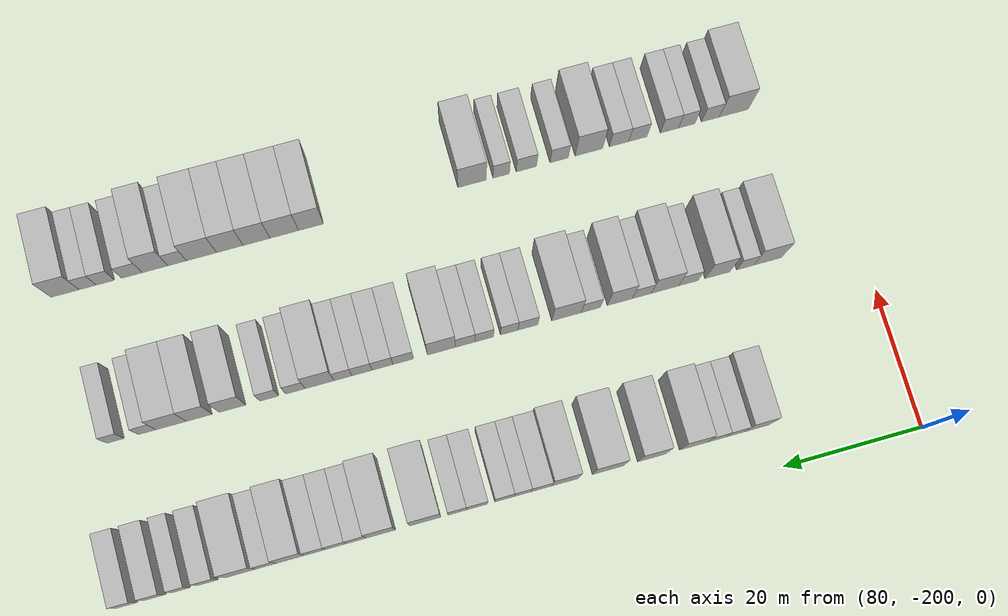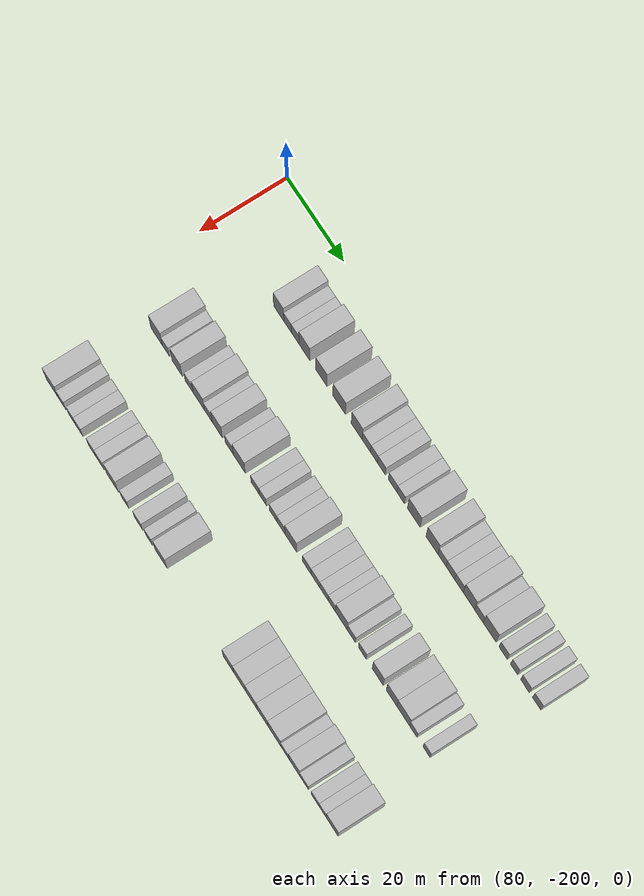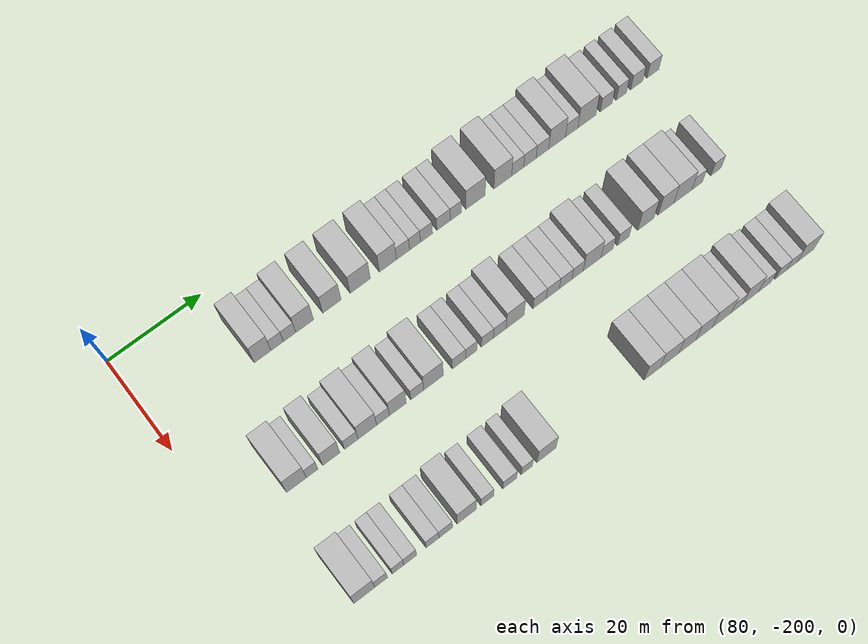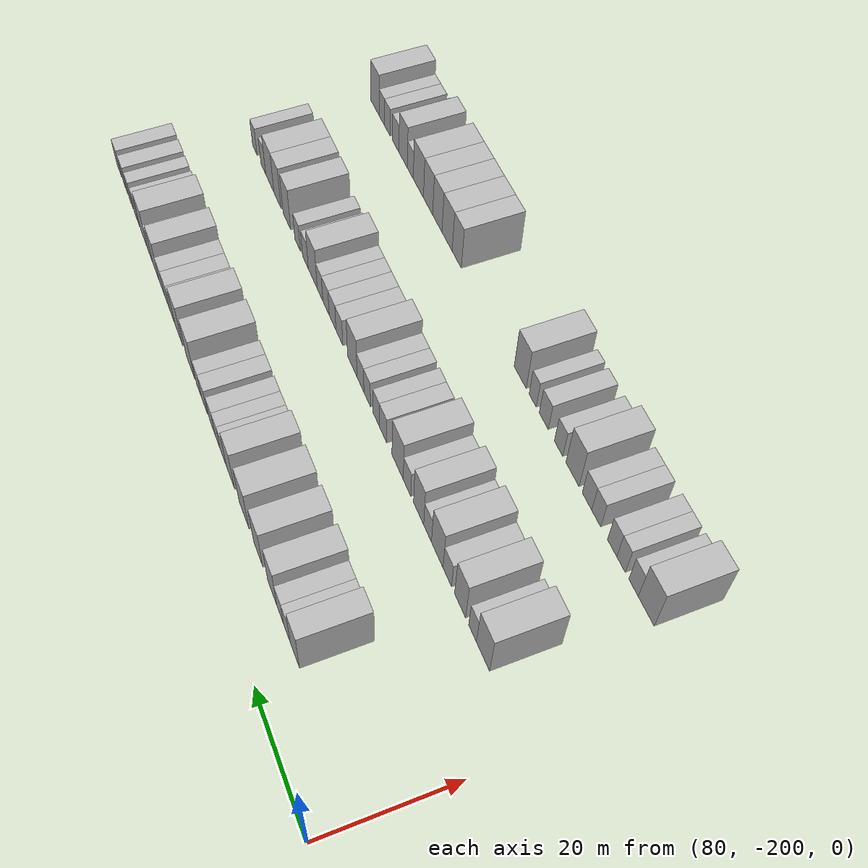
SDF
<sdf version="1.6">
 <world name="default">
  <model name="building_631">
   <static>1</static>
   <pose>91.0000 -178.0010 0 0.000000 0.000000 0.000000</pose>
   <link name="link">
    <pose>0 0 4.50 0 0 0</pose>
    <collision name="collision"><geometry><box><size>10.0000 3.6099 9.0000</size></box></geometry></collision>
    <visual name="visual">
     <cast_shadows>0</cast_shadows>
     <geometry><box><size>10.0000 3.6099 9.0000</size></box></geometry>
     <material>
      <script>
       <uri>model://HANNAS_wall/materials/scripts</uri>
       <uri>model://HANNAS_wall/materials/textures</uri>
       <name>vrc/HANNAS_wall</name>
      </script>
     </material>
    </visual>
   </link>
  </model>
  <model name="building_632">
   <static>1</static>
   <pose>91.0000 -174.8711 0 0.000000 0.000000 0.000000</pose>
   <link name="link">
    <pose>0 0 3.00 0 0 0</pose>
    <collision name="collision"><geometry><box><size>10.0000 2.6500 6.0000</size></box></geometry></collision>
    <visual name="visual">
     <cast_shadows>0</cast_shadows>
     <geometry><box><size>10.0000 2.6500 6.0000</size></box></geometry>
     <material>
      <script>
       <uri>model://HANNAS_wall/materials/scripts</uri>
       <uri>model://HANNAS_wall/materials/textures</uri>
       <name>vrc/HANNAS_wall</name>
      </script>
     </material>
    </visual>
   </link>
  </model>
  <model name="building_633">
   <static>1</static>
   <pose>91.0000 -172.1961 0 0.000000 0.000000 0.000000</pose>
   <link name="link">
    <pose>0 0 3.00 0 0 0</pose>
    <collision name="collision"><geometry><box><size>10.0000 2.7001 6.0000</size></box></geometry></collision>
    <visual name="visual">
     <cast_shadows>0</cast_shadows>
     <geometry><box><size>10.0000 2.7001 6.0000</size></box></geometry>
     <material>
      <script>
       <uri>model://HANNAS_wall/materials/scripts</uri>
       <uri>model://HANNAS_wall/materials/textures</uri>
       <name>vrc/HANNAS_wall</name>
      </script>
     </material>
    </visual>
   </link>
  </model>
  <model name="building_634">
   <static>1</static>
   <pose>91.0000 -168.9199 0 0.000000 0.000000 0.000000</pose>
   <link name="link">
    <pose>0 0 4.50 0 0 0</pose>
    <collision name="collision"><geometry><box><size>10.0000 3.8522 9.0000</size></box></geometry></collision>
    <visual name="visual">
     <cast_shadows>0</cast_shadows>
     <geometry><box><size>10.0000 3.8522 9.0000</size></box></geometry>
     <material>
      <script>
       <uri>model://HANNAS_wall/materials/scripts</uri>
       <uri>model://HANNAS_wall/materials/textures</uri>
       <name>vrc/HANNAS_wall</name>
      </script>
     </material>
    </visual>
   </link>
  </model>
  <model name="building_635">
   <static>1</static>
   <pose>91.0000 -162.9932 0 0.000000 0.000000 0.000000</pose>
   <link name="link">
    <pose>0 0 4.50 0 0 0</pose>
    <collision name="collision"><geometry><box><size>10.0000 4.0012 9.0000</size></box></geometry></collision>
    <visual name="visual">
     <cast_shadows>0</cast_shadows>
     <geometry><box><size>10.0000 4.0012 9.0000</size></box></geometry>
     <material>
      <script>
       <uri>model://HANNAS_wall/materials/scripts</uri>
       <uri>model://HANNAS_wall/materials/textures</uri>
       <name>vrc/HANNAS_wall</name>
      </script>
     </material>
    </visual>
   </link>
  </model>
  <model name="building_636">
   <static>1</static>
   <pose>91.0000 -156.7689 0 0.000000 0.000000 0.000000</pose>
   <link name="link">
    <pose>0 0 4.50 0 0 0</pose>
    <collision name="collision"><geometry><box><size>10.0000 4.4474 9.0000</size></box></geometry></collision>
    <visual name="visual">
     <cast_shadows>0</cast_shadows>
     <geometry><box><size>10.0000 4.4474 9.0000</size></box></geometry>
     <material>
      <script>
       <uri>model://HANNAS_wall/materials/scripts</uri>
       <uri>model://HANNAS_wall/materials/textures</uri>
       <name>vrc/HANNAS_wall</name>
      </script>
     </material>
    </visual>
   </link>
  </model>
  <model name="building_637">
   <static>1</static>
   <pose>91.0000 -150.6498 0 0.000000 0.000000 0.000000</pose>
   <link name="link">
    <pose>0 0 4.50 0 0 0</pose>
    <collision name="collision"><geometry><box><size>10.0000 3.7909 9.0000</size></box></geometry></collision>
    <visual name="visual">
     <cast_shadows>0</cast_shadows>
     <geometry><box><size>10.0000 3.7909 9.0000</size></box></geometry>
     <material>
      <script>
       <uri>model://HANNAS_wall/materials/scripts</uri>
       <uri>model://HANNAS_wall/materials/textures</uri>
       <name>vrc/HANNAS_wall</name>
      </script>
     </material>
    </visual>
   </link>
  </model>
  <model name="building_638">
   <static>1</static>
   <pose>91.0000 -147.2867 0 0.000000 0.000000 0.000000</pose>
   <link name="link">
    <pose>0 0 3.00 0 0 0</pose>
    <collision name="collision"><geometry><box><size>10.0000 2.9354 6.0000</size></box></geometry></collision>
    <visual name="visual">
     <cast_shadows>0</cast_shadows>
     <geometry><box><size>10.0000 2.9354 6.0000</size></box></geometry>
     <material>
      <script>
       <uri>model://HANNAS_wall/materials/scripts</uri>
       <uri>model://HANNAS_wall/materials/textures</uri>
       <name>vrc/HANNAS_wall</name>
      </script>
     </material>
    </visual>
   </link>
  </model>
  <model name="building_639">
   <static>1</static>
   <pose>91.0000 -144.6135 0 0.000000 0.000000 0.000000</pose>
   <link name="link">
    <pose>0 0 3.00 0 0 0</pose>
    <collision name="collision"><geometry><box><size>10.0000 2.4109 6.0000</size></box></geometry></collision>
    <visual name="visual">
     <cast_shadows>0</cast_shadows>
     <geometry><box><size>10.0000 2.4109 6.0000</size></box></geometry>
     <material>
      <script>
       <uri>model://HANNAS_wall/materials/scripts</uri>
       <uri>model://HANNAS_wall/materials/textures</uri>
       <name>vrc/HANNAS_wall</name>
      </script>
     </material>
    </visual>
   </link>
  </model>
  <model name="building_640">
   <static>1</static>
   <pose>91.0000 -142.0488 0 0.000000 0.000000 0.000000</pose>
   <link name="link">
    <pose>0 0 3.00 0 0 0</pose>
    <collision name="collision"><geometry><box><size>10.0000 2.7184 6.0000</size></box></geometry></collision>
    <visual name="visual">
     <cast_shadows>0</cast_shadows>
     <geometry><box><size>10.0000 2.7184 6.0000</size></box></geometry>
     <material>
      <script>
       <uri>model://HANNAS_wall/materials/scripts</uri>
       <uri>model://HANNAS_wall/materials/textures</uri>
       <name>vrc/HANNAS_wall</name>
      </script>
     </material>
    </visual>
   </link>
  </model>
  <model name="building_641">
   <static>1</static>
   <pose>91.0000 -138.1984 0 0.000000 0.000000 0.000000</pose>
   <link name="link">
    <pose>0 0 3.00 0 0 0</pose>
    <collision name="collision"><geometry><box><size>10.0000 2.9824 6.0000</size></box></geometry></collision>
    <visual name="visual">
     <cast_shadows>0</cast_shadows>
     <geometry><box><size>10.0000 2.9824 6.0000</size></box></geometry>
     <material>
      <script>
       <uri>model://HANNAS_wall/materials/scripts</uri>
       <uri>model://HANNAS_wall/materials/textures</uri>
       <name>vrc/HANNAS_wall</name>
      </script>
     </material>
    </visual>
   </link>
  </model>
  <model name="building_642">
   <static>1</static>
   <pose>91.0000 -135.4070 0 0.000000 0.000000 0.000000</pose>
   <link name="link">
    <pose>0 0 3.00 0 0 0</pose>
    <collision name="collision"><geometry><box><size>10.0000 2.6004 6.0000</size></box></geometry></collision>
    <visual name="visual">
     <cast_shadows>0</cast_shadows>
     <geometry><box><size>10.0000 2.6004 6.0000</size></box></geometry>
     <material>
      <script>
       <uri>model://HANNAS_wall/materials/scripts</uri>
       <uri>model://HANNAS_wall/materials/textures</uri>
       <name>vrc/HANNAS_wall</name>
      </script>
     </material>
    </visual>
   </link>
  </model>
  <model name="building_643">
   <static>1</static>
   <pose>91.0000 -130.9246 0 0.000000 0.000000 0.000000</pose>
   <link name="link">
    <pose>0 0 4.50 0 0 0</pose>
    <collision name="collision"><geometry><box><size>10.0000 4.3645 9.0000</size></box></geometry></collision>
    <visual name="visual">
     <cast_shadows>0</cast_shadows>
     <geometry><box><size>10.0000 4.3645 9.0000</size></box></geometry>
     <material>
      <script>
       <uri>model://HANNAS_wall/materials/scripts</uri>
       <uri>model://HANNAS_wall/materials/textures</uri>
       <name>vrc/HANNAS_wall</name>
      </script>
     </material>
    </visual>
   </link>
  </model>
  <model name="building_644">
   <static>1</static>
   <pose>91.0000 -124.6934 0 0.000000 0.000000 0.000000</pose>
   <link name="link">
    <pose>0 0 4.50 0 0 0</pose>
    <collision name="collision"><geometry><box><size>10.0000 4.0978 9.0000</size></box></geometry></collision>
    <visual name="visual">
     <cast_shadows>0</cast_shadows>
     <geometry><box><size>10.0000 4.0978 9.0000</size></box></geometry>
     <material>
      <script>
       <uri>model://HANNAS_wall/materials/scripts</uri>
       <uri>model://HANNAS_wall/materials/textures</uri>
       <name>vrc/HANNAS_wall</name>
      </script>
     </material>
    </visual>
   </link>
  </model>
  <model name="building_645">
   <static>1</static>
   <pose>91.0000 -121.2723 0 0.000000 0.000000 0.000000</pose>
   <link name="link">
    <pose>0 0 3.00 0 0 0</pose>
    <collision name="collision"><geometry><box><size>10.0000 2.7444 6.0000</size></box></geometry></collision>
    <visual name="visual">
     <cast_shadows>0</cast_shadows>
     <geometry><box><size>10.0000 2.7444 6.0000</size></box></geometry>
     <material>
      <script>
       <uri>model://HANNAS_wall/materials/scripts</uri>
       <uri>model://HANNAS_wall/materials/textures</uri>
       <name>vrc/HANNAS_wall</name>
      </script>
     </material>
    </visual>
   </link>
  </model>
  <model name="building_646">
   <static>1</static>
   <pose>91.0000 -118.4470 0 0.000000 0.000000 0.000000</pose>
   <link name="link">
    <pose>0 0 3.00 0 0 0</pose>
    <collision name="collision"><geometry><box><size>10.0000 2.9062 6.0000</size></box></geometry></collision>
    <visual name="visual">
     <cast_shadows>0</cast_shadows>
     <geometry><box><size>10.0000 2.9062 6.0000</size></box></geometry>
     <material>
      <script>
       <uri>model://HANNAS_wall/materials/scripts</uri>
       <uri>model://HANNAS_wall/materials/textures</uri>
       <name>vrc/HANNAS_wall</name>
      </script>
     </material>
    </visual>
   </link>
  </model>
  <model name="building_647">
   <static>1</static>
   <pose>91.0000 -115.5477 0 0.000000 0.000000 0.000000</pose>
   <link name="link">
    <pose>0 0 3.00 0 0 0</pose>
    <collision name="collision"><geometry><box><size>10.0000 2.8924 6.0000</size></box></geometry></collision>
    <visual name="visual">
     <cast_shadows>0</cast_shadows>
     <geometry><box><size>10.0000 2.8924 6.0000</size></box></geometry>
     <material>
      <script>
       <uri>model://HANNAS_wall/materials/scripts</uri>
       <uri>model://HANNAS_wall/materials/textures</uri>
       <name>vrc/HANNAS_wall</name>
      </script>
     </material>
    </visual>
   </link>
  </model>
  <model name="building_648">
   <static>1</static>
   <pose>91.0000 -112.1415 0 0.000000 0.000000 0.000000</pose>
   <link name="link">
    <pose>0 0 4.50 0 0 0</pose>
    <collision name="collision"><geometry><box><size>10.0000 3.9200 9.0000</size></box></geometry></collision>
    <visual name="visual">
     <cast_shadows>0</cast_shadows>
     <geometry><box><size>10.0000 3.9200 9.0000</size></box></geometry>
     <material>
      <script>
       <uri>model://HANNAS_wall/materials/scripts</uri>
       <uri>model://HANNAS_wall/materials/textures</uri>
       <name>vrc/HANNAS_wall</name>
      </script>
     </material>
    </visual>
   </link>
  </model>
  <model name="building_649">
   <static>1</static>
   <pose>91.0000 -108.7405 0 0.000000 0.000000 0.000000</pose>
   <link name="link">
    <pose>0 0 3.00 0 0 0</pose>
    <collision name="collision"><geometry><box><size>10.0000 2.8820 6.0000</size></box></geometry></collision>
    <visual name="visual">
     <cast_shadows>0</cast_shadows>
     <geometry><box><size>10.0000 2.8820 6.0000</size></box></geometry>
     <material>
      <script>
       <uri>model://HANNAS_wall/materials/scripts</uri>
       <uri>model://HANNAS_wall/materials/textures</uri>
       <name>vrc/HANNAS_wall</name>
      </script>
     </material>
    </visual>
   </link>
  </model>
  <model name="building_650">
   <static>1</static>
   <pose>91.0000 -105.1412 0 0.000000 0.000000 0.000000</pose>
   <link name="link">
    <pose>0 0 4.50 0 0 0</pose>
    <collision name="collision"><geometry><box><size>10.0000 4.3166 9.0000</size></box></geometry></collision>
    <visual name="visual">
     <cast_shadows>0</cast_shadows>
     <geometry><box><size>10.0000 4.3166 9.0000</size></box></geometry>
     <material>
      <script>
       <uri>model://HANNAS_wall/materials/scripts</uri>
       <uri>model://HANNAS_wall/materials/textures</uri>
       <name>vrc/HANNAS_wall</name>
      </script>
     </material>
    </visual>
   </link>
  </model>
  <model name="building_651">
   <static>1</static>
   <pose>91.0000 -100.5816 0 0.000000 0.000000 0.000000</pose>
   <link name="link">
    <pose>0 0 3.00 0 0 0</pose>
    <collision name="collision"><geometry><box><size>10.0000 2.8026 6.0000</size></box></geometry></collision>
    <visual name="visual">
     <cast_shadows>0</cast_shadows>
     <geometry><box><size>10.0000 2.8026 6.0000</size></box></geometry>
     <material>
      <script>
       <uri>model://HANNAS_wall/materials/scripts</uri>
       <uri>model://HANNAS_wall/materials/textures</uri>
       <name>vrc/HANNAS_wall</name>
      </script>
     </material>
    </visual>
   </link>
  </model>
  <model name="building_652">
   <static>1</static>
   <pose>91.0000 -96.9706 0 0.000000 0.000000 0.000000</pose>
   <link name="link">
    <pose>0 0 3.00 0 0 0</pose>
    <collision name="collision"><geometry><box><size>10.0000 2.4193 6.0000</size></box></geometry></collision>
    <visual name="visual">
     <cast_shadows>0</cast_shadows>
     <geometry><box><size>10.0000 2.4193 6.0000</size></box></geometry>
     <material>
      <script>
       <uri>model://HANNAS_wall/materials/scripts</uri>
       <uri>model://HANNAS_wall/materials/textures</uri>
       <name>vrc/HANNAS_wall</name>
      </script>
     </material>
    </visual>
   </link>
  </model>
  <model name="building_653">
   <static>1</static>
   <pose>91.0000 -93.2963 0 0.000000 0.000000 0.000000</pose>
   <link name="link">
    <pose>0 0 3.00 0 0 0</pose>
    <collision name="collision"><geometry><box><size>10.0000 2.9294 6.0000</size></box></geometry></collision>
    <visual name="visual">
     <cast_shadows>0</cast_shadows>
     <geometry><box><size>10.0000 2.9294 6.0000</size></box></geometry>
     <material>
      <script>
       <uri>model://HANNAS_wall/materials/scripts</uri>
       <uri>model://HANNAS_wall/materials/textures</uri>
       <name>vrc/HANNAS_wall</name>
      </script>
     </material>
    </visual>
   </link>
  </model>
  <model name="building_654">
   <static>1</static>
   <pose>91.0000 -89.4094 0 0.000000 0.000000 0.000000</pose>
   <link name="link">
    <pose>0 0 3.00 0 0 0</pose>
    <collision name="collision"><geometry><box><size>10.0000 2.8443 6.0000</size></box></geometry></collision>
    <visual name="visual">
     <cast_shadows>0</cast_shadows>
     <geometry><box><size>10.0000 2.8443 6.0000</size></box></geometry>
     <material>
      <script>
       <uri>model://HANNAS_wall/materials/scripts</uri>
       <uri>model://HANNAS_wall/materials/textures</uri>
       <name>vrc/HANNAS_wall</name>
      </script>
     </material>
    </visual>
   </link>
  </model>
  <model name="building_819">
   <static>1</static>
   <pose>113.0000 -186.6256 0 0.000000 0.000000 0.000000</pose>
   <link name="link">
    <pose>0 0 4.50 0 0 0</pose>
    <collision name="collision"><geometry><box><size>10.0000 4.1441 9.0000</size></box></geometry></collision>
    <visual name="visual">
     <cast_shadows>0</cast_shadows>
     <geometry><box><size>10.0000 4.1441 9.0000</size></box></geometry>
     <material>
      <script>
       <uri>model://HANNAS_wall/materials/scripts</uri>
       <uri>model://HANNAS_wall/materials/textures</uri>
       <name>vrc/HANNAS_wall</name>
      </script>
     </material>
    </visual>
   </link>
  </model>
  <model name="building_820">
   <static>1</static>
   <pose>113.0000 -183.3232 0 0.000000 0.000000 0.000000</pose>
   <link name="link">
    <pose>0 0 3.00 0 0 0</pose>
    <collision name="collision"><geometry><box><size>10.0000 2.4608 6.0000</size></box></geometry></collision>
    <visual name="visual">
     <cast_shadows>0</cast_shadows>
     <geometry><box><size>10.0000 2.4608 6.0000</size></box></geometry>
     <material>
      <script>
       <uri>model://HANNAS_wall/materials/scripts</uri>
       <uri>model://HANNAS_wall/materials/textures</uri>
       <name>vrc/HANNAS_wall</name>
      </script>
     </material>
    </visual>
   </link>
  </model>
  <model name="building_821">
   <static>1</static>
   <pose>113.0000 -179.2769 0 0.000000 0.000000 0.000000</pose>
   <link name="link">
    <pose>0 0 4.50 0 0 0</pose>
    <collision name="collision"><geometry><box><size>10.0000 3.6319 9.0000</size></box></geometry></collision>
    <visual name="visual">
     <cast_shadows>0</cast_shadows>
     <geometry><box><size>10.0000 3.6319 9.0000</size></box></geometry>
     <material>
      <script>
       <uri>model://HANNAS_wall/materials/scripts</uri>
       <uri>model://HANNAS_wall/materials/textures</uri>
       <name>vrc/HANNAS_wall</name>
      </script>
     </material>
    </visual>
   </link>
  </model>
  <model name="building_822">
   <static>1</static>
   <pose>113.0000 -175.0207 0 0.000000 0.000000 0.000000</pose>
   <link name="link">
    <pose>0 0 3.00 0 0 0</pose>
    <collision name="collision"><geometry><box><size>10.0000 2.8804 6.0000</size></box></geometry></collision>
    <visual name="visual">
     <cast_shadows>0</cast_shadows>
     <geometry><box><size>10.0000 2.8804 6.0000</size></box></geometry>
     <material>
      <script>
       <uri>model://HANNAS_wall/materials/scripts</uri>
       <uri>model://HANNAS_wall/materials/textures</uri>
       <name>vrc/HANNAS_wall</name>
      </script>
     </material>
    </visual>
   </link>
  </model>
  <model name="building_823">
   <static>1</static>
   <pose>113.0000 -171.5806 0 0.000000 0.000000 0.000000</pose>
   <link name="link">
    <pose>0 0 4.50 0 0 0</pose>
    <collision name="collision"><geometry><box><size>10.0000 3.9998 9.0000</size></box></geometry></collision>
    <visual name="visual">
     <cast_shadows>0</cast_shadows>
     <geometry><box><size>10.0000 3.9998 9.0000</size></box></geometry>
     <material>
      <script>
       <uri>model://HANNAS_wall/materials/scripts</uri>
       <uri>model://HANNAS_wall/materials/textures</uri>
       <name>vrc/HANNAS_wall</name>
      </script>
     </material>
    </visual>
   </link>
  </model>
  <model name="building_824">
   <static>1</static>
   <pose>113.0000 -168.2047 0 0.000000 0.000000 0.000000</pose>
   <link name="link">
    <pose>0 0 3.00 0 0 0</pose>
    <collision name="collision"><geometry><box><size>10.0000 2.7519 6.0000</size></box></geometry></collision>
    <visual name="visual">
     <cast_shadows>0</cast_shadows>
     <geometry><box><size>10.0000 2.7519 6.0000</size></box></geometry>
     <material>
      <script>
       <uri>model://HANNAS_wall/materials/scripts</uri>
       <uri>model://HANNAS_wall/materials/textures</uri>
       <name>vrc/HANNAS_wall</name>
      </script>
     </material>
    </visual>
   </link>
  </model>
  <model name="building_825">
   <static>1</static>
   <pose>113.0000 -165.0136 0 0.000000 0.000000 0.000000</pose>
   <link name="link">
    <pose>0 0 4.50 0 0 0</pose>
    <collision name="collision"><geometry><box><size>10.0000 3.6305 9.0000</size></box></geometry></collision>
    <visual name="visual">
     <cast_shadows>0</cast_shadows>
     <geometry><box><size>10.0000 3.6305 9.0000</size></box></geometry>
     <material>
      <script>
       <uri>model://HANNAS_wall/materials/scripts</uri>
       <uri>model://HANNAS_wall/materials/textures</uri>
       <name>vrc/HANNAS_wall</name>
      </script>
     </material>
    </visual>
   </link>
  </model>
  <model name="building_826">
   <static>1</static>
   <pose>113.0000 -160.8009 0 0.000000 0.000000 0.000000</pose>
   <link name="link">
    <pose>0 0 3.00 0 0 0</pose>
    <collision name="collision"><geometry><box><size>10.0000 2.7948 6.0000</size></box></geometry></collision>
    <visual name="visual">
     <cast_shadows>0</cast_shadows>
     <geometry><box><size>10.0000 2.7948 6.0000</size></box></geometry>
     <material>
      <script>
       <uri>model://HANNAS_wall/materials/scripts</uri>
       <uri>model://HANNAS_wall/materials/textures</uri>
       <name>vrc/HANNAS_wall</name>
      </script>
     </material>
    </visual>
   </link>
  </model>
  <model name="building_827">
   <static>1</static>
   <pose>113.0000 -157.2652 0 0.000000 0.000000 0.000000</pose>
   <link name="link">
    <pose>0 0 4.50 0 0 0</pose>
    <collision name="collision"><geometry><box><size>10.0000 4.2765 9.0000</size></box></geometry></collision>
    <visual name="visual">
     <cast_shadows>0</cast_shadows>
     <geometry><box><size>10.0000 4.2765 9.0000</size></box></geometry>
     <material>
      <script>
       <uri>model://HANNAS_wall/materials/scripts</uri>
       <uri>model://HANNAS_wall/materials/textures</uri>
       <name>vrc/HANNAS_wall</name>
      </script>
     </material>
    </visual>
   </link>
  </model>
  <model name="building_828">
   <static>1</static>
   <pose>113.0000 -151.6855 0 0.000000 0.000000 0.000000</pose>
   <link name="link">
    <pose>0 0 3.00 0 0 0</pose>
    <collision name="collision"><geometry><box><size>10.0000 2.8829 6.0000</size></box></geometry></collision>
    <visual name="visual">
     <cast_shadows>0</cast_shadows>
     <geometry><box><size>10.0000 2.8829 6.0000</size></box></geometry>
     <material>
      <script>
       <uri>model://HANNAS_wall/materials/scripts</uri>
       <uri>model://HANNAS_wall/materials/textures</uri>
       <name>vrc/HANNAS_wall</name>
      </script>
     </material>
    </visual>
   </link>
  </model>
  <model name="building_829">
   <static>1</static>
   <pose>113.0000 -148.9805 0 0.000000 0.000000 0.000000</pose>
   <link name="link">
    <pose>0 0 3.00 0 0 0</pose>
    <collision name="collision"><geometry><box><size>10.0000 2.5271 6.0000</size></box></geometry></collision>
    <visual name="visual">
     <cast_shadows>0</cast_shadows>
     <geometry><box><size>10.0000 2.5271 6.0000</size></box></geometry>
     <material>
      <script>
       <uri>model://HANNAS_wall/materials/scripts</uri>
       <uri>model://HANNAS_wall/materials/textures</uri>
       <name>vrc/HANNAS_wall</name>
      </script>
     </material>
    </visual>
   </link>
  </model>
  <model name="building_830">
   <static>1</static>
   <pose>113.0000 -145.3909 0 0.000000 0.000000 0.000000</pose>
   <link name="link">
    <pose>0 0 3.00 0 0 0</pose>
    <collision name="collision"><geometry><box><size>10.0000 2.6521 6.0000</size></box></geometry></collision>
    <visual name="visual">
     <cast_shadows>0</cast_shadows>
     <geometry><box><size>10.0000 2.6521 6.0000</size></box></geometry>
     <material>
      <script>
       <uri>model://HANNAS_wall/materials/scripts</uri>
       <uri>model://HANNAS_wall/materials/textures</uri>
       <name>vrc/HANNAS_wall</name>
      </script>
     </material>
    </visual>
   </link>
  </model>
  <model name="building_831">
   <static>1</static>
   <pose>113.0000 -142.6433 0 0.000000 0.000000 0.000000</pose>
   <link name="link">
    <pose>0 0 3.00 0 0 0</pose>
    <collision name="collision"><geometry><box><size>10.0000 2.8433 6.0000</size></box></geometry></collision>
    <visual name="visual">
     <cast_shadows>0</cast_shadows>
     <geometry><box><size>10.0000 2.8433 6.0000</size></box></geometry>
     <material>
      <script>
       <uri>model://HANNAS_wall/materials/scripts</uri>
       <uri>model://HANNAS_wall/materials/textures</uri>
       <name>vrc/HANNAS_wall</name>
      </script>
     </material>
    </visual>
   </link>
  </model>
  <model name="building_832">
   <static>1</static>
   <pose>113.0000 -139.2187 0 0.000000 0.000000 0.000000</pose>
   <link name="link">
    <pose>0 0 4.50 0 0 0</pose>
    <collision name="collision"><geometry><box><size>10.0000 4.0060 9.0000</size></box></geometry></collision>
    <visual name="visual">
     <cast_shadows>0</cast_shadows>
     <geometry><box><size>10.0000 4.0060 9.0000</size></box></geometry>
     <material>
      <script>
       <uri>model://HANNAS_wall/materials/scripts</uri>
       <uri>model://HANNAS_wall/materials/textures</uri>
       <name>vrc/HANNAS_wall</name>
      </script>
     </material>
    </visual>
   </link>
  </model>
  <model name="building_833">
   <static>1</static>
   <pose>113.0000 -133.7383 0 0.000000 0.000000 0.000000</pose>
   <link name="link">
    <pose>0 0 3.00 0 0 0</pose>
    <collision name="collision"><geometry><box><size>10.0000 2.9546 6.0000</size></box></geometry></collision>
    <visual name="visual">
     <cast_shadows>0</cast_shadows>
     <geometry><box><size>10.0000 2.9546 6.0000</size></box></geometry>
     <material>
      <script>
       <uri>model://HANNAS_wall/materials/scripts</uri>
       <uri>model://HANNAS_wall/materials/textures</uri>
       <name>vrc/HANNAS_wall</name>
      </script>
     </material>
    </visual>
   </link>
  </model>
  <model name="building_834">
   <static>1</static>
   <pose>113.0000 -130.7680 0 0.000000 0.000000 0.000000</pose>
   <link name="link">
    <pose>0 0 3.00 0 0 0</pose>
    <collision name="collision"><geometry><box><size>10.0000 2.9861 6.0000</size></box></geometry></collision>
    <visual name="visual">
     <cast_shadows>0</cast_shadows>
     <geometry><box><size>10.0000 2.9861 6.0000</size></box></geometry>
     <material>
      <script>
       <uri>model://HANNAS_wall/materials/scripts</uri>
       <uri>model://HANNAS_wall/materials/textures</uri>
       <name>vrc/HANNAS_wall</name>
      </script>
     </material>
    </visual>
   </link>
  </model>
  <model name="building_835">
   <static>1</static>
   <pose>113.0000 -127.8377 0 0.000000 0.000000 0.000000</pose>
   <link name="link">
    <pose>0 0 3.00 0 0 0</pose>
    <collision name="collision"><geometry><box><size>10.0000 2.8746 6.0000</size></box></geometry></collision>
    <visual name="visual">
     <cast_shadows>0</cast_shadows>
     <geometry><box><size>10.0000 2.8746 6.0000</size></box></geometry>
     <material>
      <script>
       <uri>model://HANNAS_wall/materials/scripts</uri>
       <uri>model://HANNAS_wall/materials/textures</uri>
       <name>vrc/HANNAS_wall</name>
      </script>
     </material>
    </visual>
   </link>
  </model>
  <model name="building_836">
   <static>1</static>
   <pose>113.0000 -125.1226 0 0.000000 0.000000 0.000000</pose>
   <link name="link">
    <pose>0 0 3.00 0 0 0</pose>
    <collision name="collision"><geometry><box><size>10.0000 2.5556 6.0000</size></box></geometry></collision>
    <visual name="visual">
     <cast_shadows>0</cast_shadows>
     <geometry><box><size>10.0000 2.5556 6.0000</size></box></geometry>
     <material>
      <script>
       <uri>model://HANNAS_wall/materials/scripts</uri>
       <uri>model://HANNAS_wall/materials/textures</uri>
       <name>vrc/HANNAS_wall</name>
      </script>
     </material>
    </visual>
   </link>
  </model>
  <model name="building_837">
   <static>1</static>
   <pose>113.0000 -121.7900 0 0.000000 0.000000 0.000000</pose>
   <link name="link">
    <pose>0 0 4.50 0 0 0</pose>
    <collision name="collision"><geometry><box><size>10.0000 4.1096 9.0000</size></box></geometry></collision>
    <visual name="visual">
     <cast_shadows>0</cast_shadows>
     <geometry><box><size>10.0000 4.1096 9.0000</size></box></geometry>
     <material>
      <script>
       <uri>model://HANNAS_wall/materials/scripts</uri>
       <uri>model://HANNAS_wall/materials/textures</uri>
       <name>vrc/HANNAS_wall</name>
      </script>
     </material>
    </visual>
   </link>
  </model>
  <model name="building_838">
   <static>1</static>
   <pose>113.0000 -118.3563 0 0.000000 0.000000 0.000000</pose>
   <link name="link">
    <pose>0 0 3.00 0 0 0</pose>
    <collision name="collision"><geometry><box><size>10.0000 2.7577 6.0000</size></box></geometry></collision>
    <visual name="visual">
     <cast_shadows>0</cast_shadows>
     <geometry><box><size>10.0000 2.7577 6.0000</size></box></geometry>
     <material>
      <script>
       <uri>model://HANNAS_wall/materials/scripts</uri>
       <uri>model://HANNAS_wall/materials/textures</uri>
       <name>vrc/HANNAS_wall</name>
      </script>
     </material>
    </visual>
   </link>
  </model>
  <model name="building_839">
   <static>1</static>
   <pose>113.0000 -114.6279 0 0.000000 0.000000 0.000000</pose>
   <link name="link">
    <pose>0 0 3.00 0 0 0</pose>
    <collision name="collision"><geometry><box><size>10.0000 2.6992 6.0000</size></box></geometry></collision>
    <visual name="visual">
     <cast_shadows>0</cast_shadows>
     <geometry><box><size>10.0000 2.6992 6.0000</size></box></geometry>
     <material>
      <script>
       <uri>model://HANNAS_wall/materials/scripts</uri>
       <uri>model://HANNAS_wall/materials/textures</uri>
       <name>vrc/HANNAS_wall</name>
      </script>
     </material>
    </visual>
   </link>
  </model>
  <model name="building_840">
   <static>1</static>
   <pose>113.0000 -109.3923 0 0.000000 0.000000 0.000000</pose>
   <link name="link">
    <pose>0 0 4.50 0 0 0</pose>
    <collision name="collision"><geometry><box><size>10.0000 3.7720 9.0000</size></box></geometry></collision>
    <visual name="visual">
     <cast_shadows>0</cast_shadows>
     <geometry><box><size>10.0000 3.7720 9.0000</size></box></geometry>
     <material>
      <script>
       <uri>model://HANNAS_wall/materials/scripts</uri>
       <uri>model://HANNAS_wall/materials/textures</uri>
       <name>vrc/HANNAS_wall</name>
      </script>
     </material>
    </visual>
   </link>
  </model>
  <model name="building_841">
   <static>1</static>
   <pose>113.0000 -104.6945 0 0.000000 0.000000 0.000000</pose>
   <link name="link">
    <pose>0 0 4.50 0 0 0</pose>
    <collision name="collision"><geometry><box><size>10.0000 3.6235 9.0000</size></box></geometry></collision>
    <visual name="visual">
     <cast_shadows>0</cast_shadows>
     <geometry><box><size>10.0000 3.6235 9.0000</size></box></geometry>
     <material>
      <script>
       <uri>model://HANNAS_wall/materials/scripts</uri>
       <uri>model://HANNAS_wall/materials/textures</uri>
       <name>vrc/HANNAS_wall</name>
      </script>
     </material>
    </visual>
   </link>
  </model>
  <model name="building_842">
   <static>1</static>
   <pose>113.0000 -100.7496 0 0.000000 0.000000 0.000000</pose>
   <link name="link">
    <pose>0 0 4.50 0 0 0</pose>
    <collision name="collision"><geometry><box><size>10.0000 4.2664 9.0000</size></box></geometry></collision>
    <visual name="visual">
     <cast_shadows>0</cast_shadows>
     <geometry><box><size>10.0000 4.2664 9.0000</size></box></geometry>
     <material>
      <script>
       <uri>model://HANNAS_wall/materials/scripts</uri>
       <uri>model://HANNAS_wall/materials/textures</uri>
       <name>vrc/HANNAS_wall</name>
      </script>
     </material>
    </visual>
   </link>
  </model>
  <model name="building_843">
   <static>1</static>
   <pose>113.0000 -97.3529 0 0.000000 0.000000 0.000000</pose>
   <link name="link">
    <pose>0 0 3.00 0 0 0</pose>
    <collision name="collision"><geometry><box><size>10.0000 2.5270 6.0000</size></box></geometry></collision>
    <visual name="visual">
     <cast_shadows>0</cast_shadows>
     <geometry><box><size>10.0000 2.5270 6.0000</size></box></geometry>
     <material>
      <script>
       <uri>model://HANNAS_wall/materials/scripts</uri>
       <uri>model://HANNAS_wall/materials/textures</uri>
       <name>vrc/HANNAS_wall</name>
      </script>
     </material>
    </visual>
   </link>
  </model>
  <model name="building_844">
   <static>1</static>
   <pose>113.0000 -92.8815 0 0.000000 0.000000 0.000000</pose>
   <link name="link">
    <pose>0 0 3.00 0 0 0</pose>
    <collision name="collision"><geometry><box><size>10.0000 2.4158 6.0000</size></box></geometry></collision>
    <visual name="visual">
     <cast_shadows>0</cast_shadows>
     <geometry><box><size>10.0000 2.4158 6.0000</size></box></geometry>
     <material>
      <script>
       <uri>model://HANNAS_wall/materials/scripts</uri>
       <uri>model://HANNAS_wall/materials/textures</uri>
       <name>vrc/HANNAS_wall</name>
      </script>
     </material>
    </visual>
   </link>
  </model>
  <model name="building_1009">
   <static>1</static>
   <pose>135.0000 -188.5889 0 0.000000 0.000000 0.000000</pose>
   <link name="link">
    <pose>0 0 4.50 0 0 0</pose>
    <collision name="collision"><geometry><box><size>10.0000 4.3575 9.0000</size></box></geometry></collision>
    <visual name="visual">
     <cast_shadows>0</cast_shadows>
     <geometry><box><size>10.0000 4.3575 9.0000</size></box></geometry>
     <material>
      <script>
       <uri>model://HANNAS_wall/materials/scripts</uri>
       <uri>model://HANNAS_wall/materials/textures</uri>
       <name>vrc/HANNAS_wall</name>
      </script>
     </material>
    </visual>
   </link>
  </model>
  <model name="building_1010">
   <static>1</static>
   <pose>135.0000 -185.0889 0 0.000000 0.000000 0.000000</pose>
   <link name="link">
    <pose>0 0 3.00 0 0 0</pose>
    <collision name="collision"><geometry><box><size>10.0000 2.6423 6.0000</size></box></geometry></collision>
    <visual name="visual">
     <cast_shadows>0</cast_shadows>
     <geometry><box><size>10.0000 2.6423 6.0000</size></box></geometry>
     <material>
      <script>
       <uri>model://HANNAS_wall/materials/scripts</uri>
       <uri>model://HANNAS_wall/materials/textures</uri>
       <name>vrc/HANNAS_wall</name>
      </script>
     </material>
    </visual>
   </link>
  </model>
  <model name="building_1011">
   <static>1</static>
   <pose>135.0000 -181.5540 0 0.000000 0.000000 0.000000</pose>
   <link name="link">
    <pose>0 0 3.00 0 0 0</pose>
    <collision name="collision"><geometry><box><size>10.0000 2.4275 6.0000</size></box></geometry></collision>
    <visual name="visual">
     <cast_shadows>0</cast_shadows>
     <geometry><box><size>10.0000 2.4275 6.0000</size></box></geometry>
     <material>
      <script>
       <uri>model://HANNAS_wall/materials/scripts</uri>
       <uri>model://HANNAS_wall/materials/textures</uri>
       <name>vrc/HANNAS_wall</name>
      </script>
     </material>
    </visual>
   </link>
  </model>
  <model name="building_1012">
   <static>1</static>
   <pose>135.0000 -178.9841 0 0.000000 0.000000 0.000000</pose>
   <link name="link">
    <pose>0 0 3.00 0 0 0</pose>
    <collision name="collision"><geometry><box><size>10.0000 2.7124 6.0000</size></box></geometry></collision>
    <visual name="visual">
     <cast_shadows>0</cast_shadows>
     <geometry><box><size>10.0000 2.7124 6.0000</size></box></geometry>
     <material>
      <script>
       <uri>model://HANNAS_wall/materials/scripts</uri>
       <uri>model://HANNAS_wall/materials/textures</uri>
       <name>vrc/HANNAS_wall</name>
      </script>
     </material>
    </visual>
   </link>
  </model>
  <model name="building_1013">
   <static>1</static>
   <pose>135.0000 -174.2717 0 0.000000 0.000000 0.000000</pose>
   <link name="link">
    <pose>0 0 3.00 0 0 0</pose>
    <collision name="collision"><geometry><box><size>10.0000 2.7125 6.0000</size></box></geometry></collision>
    <visual name="visual">
     <cast_shadows>0</cast_shadows>
     <geometry><box><size>10.0000 2.7125 6.0000</size></box></geometry>
     <material>
      <script>
       <uri>model://HANNAS_wall/materials/scripts</uri>
       <uri>model://HANNAS_wall/materials/textures</uri>
       <name>vrc/HANNAS_wall</name>
      </script>
     </material>
    </visual>
   </link>
  </model>
  <model name="building_1014">
   <static>1</static>
   <pose>135.0000 -171.4791 0 0.000000 0.000000 0.000000</pose>
   <link name="link">
    <pose>0 0 3.00 0 0 0</pose>
    <collision name="collision"><geometry><box><size>10.0000 2.8726 6.0000</size></box></geometry></collision>
    <visual name="visual">
     <cast_shadows>0</cast_shadows>
     <geometry><box><size>10.0000 2.8726 6.0000</size></box></geometry>
     <material>
      <script>
       <uri>model://HANNAS_wall/materials/scripts</uri>
       <uri>model://HANNAS_wall/materials/textures</uri>
       <name>vrc/HANNAS_wall</name>
      </script>
     </material>
    </visual>
   </link>
  </model>
  <model name="building_1015">
   <static>1</static>
   <pose>135.0000 -166.9937 0 0.000000 0.000000 0.000000</pose>
   <link name="link">
    <pose>0 0 4.50 0 0 0</pose>
    <collision name="collision"><geometry><box><size>10.0000 4.0982 9.0000</size></box></geometry></collision>
    <visual name="visual">
     <cast_shadows>0</cast_shadows>
     <geometry><box><size>10.0000 4.0982 9.0000</size></box></geometry>
     <material>
      <script>
       <uri>model://HANNAS_wall/materials/scripts</uri>
       <uri>model://HANNAS_wall/materials/textures</uri>
       <name>vrc/HANNAS_wall</name>
      </script>
     </material>
    </visual>
   </link>
  </model>
  <model name="building_1016">
   <static>1</static>
   <pose>135.0000 -162.5912 0 0.000000 0.000000 0.000000</pose>
   <link name="link">
    <pose>0 0 3.00 0 0 0</pose>
    <collision name="collision"><geometry><box><size>10.0000 2.7068 6.0000</size></box></geometry></collision>
    <visual name="visual">
     <cast_shadows>0</cast_shadows>
     <geometry><box><size>10.0000 2.7068 6.0000</size></box></geometry>
     <material>
      <script>
       <uri>model://HANNAS_wall/materials/scripts</uri>
       <uri>model://HANNAS_wall/materials/textures</uri>
       <name>vrc/HANNAS_wall</name>
      </script>
     </material>
    </visual>
   </link>
  </model>
  <model name="building_1017">
   <static>1</static>
   <pose>135.0000 -157.7399 0 0.000000 0.000000 0.000000</pose>
   <link name="link">
    <pose>0 0 3.00 0 0 0</pose>
    <collision name="collision"><geometry><box><size>10.0000 2.9957 6.0000</size></box></geometry></collision>
    <visual name="visual">
     <cast_shadows>0</cast_shadows>
     <geometry><box><size>10.0000 2.9957 6.0000</size></box></geometry>
     <material>
      <script>
       <uri>model://HANNAS_wall/materials/scripts</uri>
       <uri>model://HANNAS_wall/materials/textures</uri>
       <name>vrc/HANNAS_wall</name>
      </script>
     </material>
    </visual>
   </link>
  </model>
  <model name="building_1018">
   <static>1</static>
   <pose>135.0000 -154.0351 0 0.000000 0.000000 0.000000</pose>
   <link name="link">
    <pose>0 0 3.00 0 0 0</pose>
    <collision name="collision"><geometry><box><size>10.0000 2.4139 6.0000</size></box></geometry></collision>
    <visual name="visual">
     <cast_shadows>0</cast_shadows>
     <geometry><box><size>10.0000 2.4139 6.0000</size></box></geometry>
     <material>
      <script>
       <uri>model://HANNAS_wall/materials/scripts</uri>
       <uri>model://HANNAS_wall/materials/textures</uri>
       <name>vrc/HANNAS_wall</name>
      </script>
     </material>
    </visual>
   </link>
  </model>
  <model name="building_1019">
   <static>1</static>
   <pose>135.0000 -149.7430 0 0.000000 0.000000 0.000000</pose>
   <link name="link">
    <pose>0 0 4.50 0 0 0</pose>
    <collision name="collision"><geometry><box><size>10.0000 4.1704 9.0000</size></box></geometry></collision>
    <visual name="visual">
     <cast_shadows>0</cast_shadows>
     <geometry><box><size>10.0000 4.1704 9.0000</size></box></geometry>
     <material>
      <script>
       <uri>model://HANNAS_wall/materials/scripts</uri>
       <uri>model://HANNAS_wall/materials/textures</uri>
       <name>vrc/HANNAS_wall</name>
      </script>
     </material>
    </visual>
   </link>
  </model>
  <model name="building_1020">
   <static>1</static>
   <pose>135.0000 -126.2086 0 0.000000 0.000000 0.000000</pose>
   <link name="link">
    <pose>0 0 4.50 0 0 0</pose>
    <collision name="collision"><geometry><box><size>10.0000 3.6328 9.0000</size></box></geometry></collision>
    <visual name="visual">
     <cast_shadows>0</cast_shadows>
     <geometry><box><size>10.0000 3.6328 9.0000</size></box></geometry>
     <material>
      <script>
       <uri>model://HANNAS_wall/materials/scripts</uri>
       <uri>model://HANNAS_wall/materials/textures</uri>
       <name>vrc/HANNAS_wall</name>
      </script>
     </material>
    </visual>
   </link>
  </model>
  <model name="building_1021">
   <static>1</static>
   <pose>135.0000 -122.3187 0 0.000000 0.000000 0.000000</pose>
   <link name="link">
    <pose>0 0 4.50 0 0 0</pose>
    <collision name="collision"><geometry><box><size>10.0000 4.1470 9.0000</size></box></geometry></collision>
    <visual name="visual">
     <cast_shadows>0</cast_shadows>
     <geometry><box><size>10.0000 4.1470 9.0000</size></box></geometry>
     <material>
      <script>
       <uri>model://HANNAS_wall/materials/scripts</uri>
       <uri>model://HANNAS_wall/materials/textures</uri>
       <name>vrc/HANNAS_wall</name>
      </script>
     </material>
    </visual>
   </link>
  </model>
  <model name="building_1022">
   <static>1</static>
   <pose>135.0000 -118.3121 0 0.000000 0.000000 0.000000</pose>
   <link name="link">
    <pose>0 0 4.50 0 0 0</pose>
    <collision name="collision"><geometry><box><size>10.0000 3.8663 9.0000</size></box></geometry></collision>
    <visual name="visual">
     <cast_shadows>0</cast_shadows>
     <geometry><box><size>10.0000 3.8663 9.0000</size></box></geometry>
     <material>
      <script>
       <uri>model://HANNAS_wall/materials/scripts</uri>
       <uri>model://HANNAS_wall/materials/textures</uri>
       <name>vrc/HANNAS_wall</name>
      </script>
     </material>
    </visual>
   </link>
  </model>
  <model name="building_1023">
   <static>1</static>
   <pose>135.0000 -114.4565 0 0.000000 0.000000 0.000000</pose>
   <link name="link">
    <pose>0 0 4.50 0 0 0</pose>
    <collision name="collision"><geometry><box><size>10.0000 3.8449 9.0000</size></box></geometry></collision>
    <visual name="visual">
     <cast_shadows>0</cast_shadows>
     <geometry><box><size>10.0000 3.8449 9.0000</size></box></geometry>
     <material>
      <script>
       <uri>model://HANNAS_wall/materials/scripts</uri>
       <uri>model://HANNAS_wall/materials/textures</uri>
       <name>vrc/HANNAS_wall</name>
      </script>
     </material>
    </visual>
   </link>
  </model>
  <model name="building_1024">
   <static>1</static>
   <pose>135.0000 -110.3421 0 0.000000 0.000000 0.000000</pose>
   <link name="link">
    <pose>0 0 4.50 0 0 0</pose>
    <collision name="collision"><geometry><box><size>10.0000 4.3838 9.0000</size></box></geometry></collision>
    <visual name="visual">
     <cast_shadows>0</cast_shadows>
     <geometry><box><size>10.0000 4.3838 9.0000</size></box></geometry>
     <material>
      <script>
       <uri>model://HANNAS_wall/materials/scripts</uri>
       <uri>model://HANNAS_wall/materials/textures</uri>
       <name>vrc/HANNAS_wall</name>
      </script>
     </material>
    </visual>
   </link>
  </model>
  <model name="building_1025">
   <static>1</static>
   <pose>135.0000 -106.8201 0 0.000000 0.000000 0.000000</pose>
   <link name="link">
    <pose>0 0 3.00 0 0 0</pose>
    <collision name="collision"><geometry><box><size>10.0000 2.6603 6.0000</size></box></geometry></collision>
    <visual name="visual">
     <cast_shadows>0</cast_shadows>
     <geometry><box><size>10.0000 2.6603 6.0000</size></box></geometry>
     <material>
      <script>
       <uri>model://HANNAS_wall/materials/scripts</uri>
       <uri>model://HANNAS_wall/materials/textures</uri>
       <name>vrc/HANNAS_wall</name>
      </script>
     </material>
    </visual>
   </link>
  </model>
  <model name="building_1026">
   <static>1</static>
   <pose>135.0000 -103.6400 0 0.000000 0.000000 0.000000</pose>
   <link name="link">
    <pose>0 0 4.50 0 0 0</pose>
    <collision name="collision"><geometry><box><size>10.0000 3.7000 9.0000</size></box></geometry></collision>
    <visual name="visual">
     <cast_shadows>0</cast_shadows>
     <geometry><box><size>10.0000 3.7000 9.0000</size></box></geometry>
     <material>
      <script>
       <uri>model://HANNAS_wall/materials/scripts</uri>
       <uri>model://HANNAS_wall/materials/textures</uri>
       <name>vrc/HANNAS_wall</name>
      </script>
     </material>
    </visual>
   </link>
  </model>
  <model name="building_1027">
   <static>1</static>
   <pose>135.0000 -100.3048 0 0.000000 0.000000 0.000000</pose>
   <link name="link">
    <pose>0 0 3.00 0 0 0</pose>
    <collision name="collision"><geometry><box><size>10.0000 2.9702 6.0000</size></box></geometry></collision>
    <visual name="visual">
     <cast_shadows>0</cast_shadows>
     <geometry><box><size>10.0000 2.9702 6.0000</size></box></geometry>
     <material>
      <script>
       <uri>model://HANNAS_wall/materials/scripts</uri>
       <uri>model://HANNAS_wall/materials/textures</uri>
       <name>vrc/HANNAS_wall</name>
      </script>
     </material>
    </visual>
   </link>
  </model>
  <model name="building_1028">
   <static>1</static>
   <pose>135.0000 -96.4988 0 0.000000 0.000000 0.000000</pose>
   <link name="link">
    <pose>0 0 3.00 0 0 0</pose>
    <collision name="collision"><geometry><box><size>10.0000 2.6419 6.0000</size></box></geometry></collision>
    <visual name="visual">
     <cast_shadows>0</cast_shadows>
     <geometry><box><size>10.0000 2.6419 6.0000</size></box></geometry>
     <material>
      <script>
       <uri>model://HANNAS_wall/materials/scripts</uri>
       <uri>model://HANNAS_wall/materials/textures</uri>
       <name>vrc/HANNAS_wall</name>
      </script>
     </material>
    </visual>
   </link>
  </model>
  <model name="building_1029">
   <static>1</static>
   <pose>135.0000 -93.9498 0 0.000000 0.000000 0.000000</pose>
   <link name="link">
    <pose>0 0 3.00 0 0 0</pose>
    <collision name="collision"><geometry><box><size>10.0000 2.4560 6.0000</size></box></geometry></collision>
    <visual name="visual">
     <cast_shadows>0</cast_shadows>
     <geometry><box><size>10.0000 2.4560 6.0000</size></box></geometry>
     <material>
      <script>
       <uri>model://HANNAS_wall/materials/scripts</uri>
       <uri>model://HANNAS_wall/materials/textures</uri>
       <name>vrc/HANNAS_wall</name>
      </script>
     </material>
    </visual>
   </link>
  </model>
  <model name="building_1030">
   <static>1</static>
   <pose>135.0000 -90.7215 0 0.000000 0.000000 0.000000</pose>
   <link name="link">
    <pose>0 0 4.50 0 0 0</pose>
    <collision name="collision"><geometry><box><size>10.0000 4.0006 9.0000</size></box></geometry></collision>
    <visual name="visual">
     <cast_shadows>0</cast_shadows>
     <geometry><box><size>10.0000 4.0006 9.0000</size></box></geometry>
     <material>
      <script>
       <uri>model://HANNAS_wall/materials/scripts</uri>
       <uri>model://HANNAS_wall/materials/textures</uri>
       <name>vrc/HANNAS_wall</name>
      </script>
     </material>
    </visual>
   </link>
  </model>
 </world>
</sdf>
